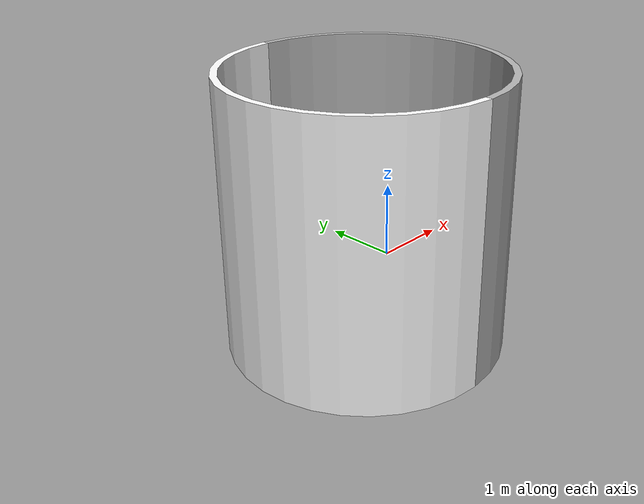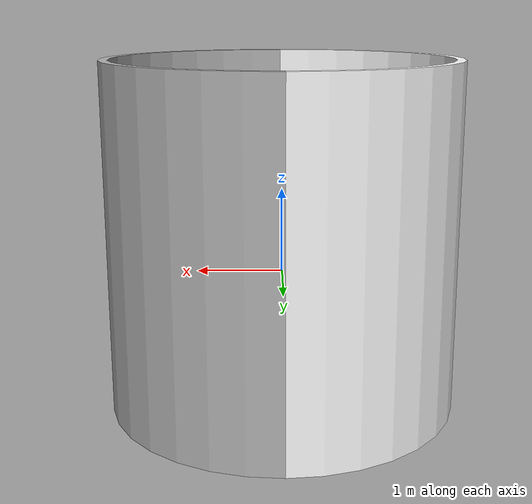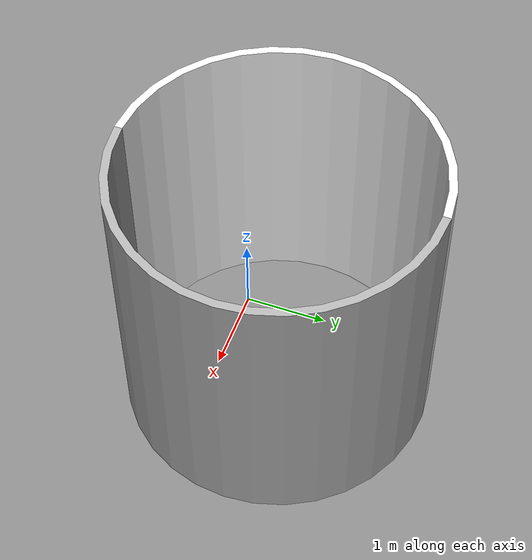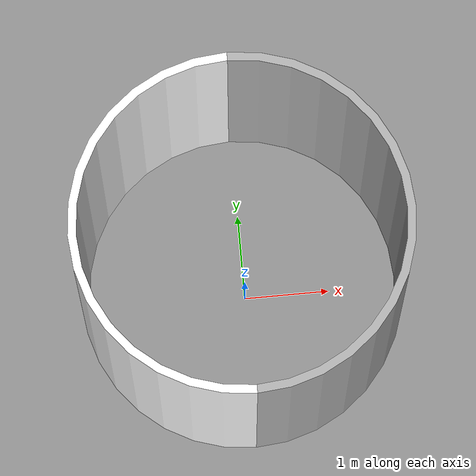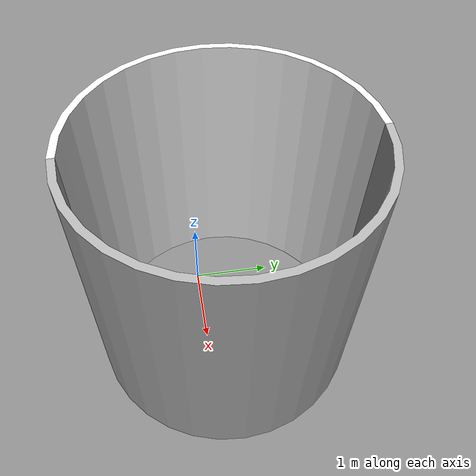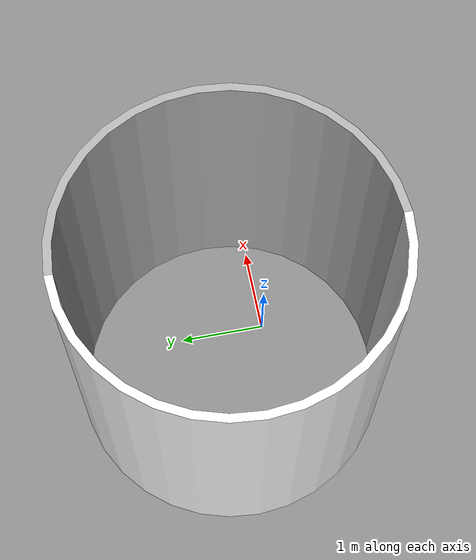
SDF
<?xml version="1.0" ?>
<sdf version="1.4">
  <world name="default">
    <gui>
        <camera name="user_camera">
            <pose>0.0 -1.6 1.0 0.0 0.275 1.57</pose>
        </camera>
    </gui>

    <include>
      <uri>model://single_edge2</uri>
      <pose>0.0 0.4 0.55 1.57 0 0</pose>
    </include>

   <physics type='ode'>
       <max_step_size>0.001</max_step_size>
       <real_time_factor>1.0</real_time_factor>
       <real_time_update_rate>1000</real_time_update_rate>
       <gravity>0 0 -9.8</gravity>
    </physics>
    <scene>
	    <shadows>false</shadows>
	    <ambient>200.0 200.0 200.0 128.0</ambient>
    </scene>
  </world>
</sdf>

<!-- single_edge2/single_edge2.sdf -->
<sdf version="1.6">
<model name="single_edge2">
  <static>true</static>
  <link name="link">
    <visual name="visual1">
      <pose>0 0 0 0 0 0</pose>
      <geometry>
        <mesh>
          <uri>model://single_edge2/meshes/hollow_cylinder_left_half.dae</uri>
        </mesh>
      </geometry>
      <material>
        <ambient>1.0 1.0 1.0 1</ambient>
        <diffuse>1.0 1.0 1.0 1</diffuse>
        <specular>0 0 0 1</specular>
        <emissive>0 0 0 1</emissive>
      </material>
    </visual>
    <visual name="visual2">
      <pose>0 0 0 0 0 0</pose>
      <geometry>
        <mesh>
          <uri>model://single_edge2/meshes/hollow_cylinder_right_half.dae</uri>
        </mesh>
      </geometry>
      <material>
        <ambient>0.3 0.3 0.3 1</ambient>
        <diffuse>0.7 0.7 0.7 1</diffuse>
        <specular>0 0 0 1</specular>
        <emissive>0 0 0 1</emissive>
      </material>
    </visual>
  </link>
</model>
</sdf>
